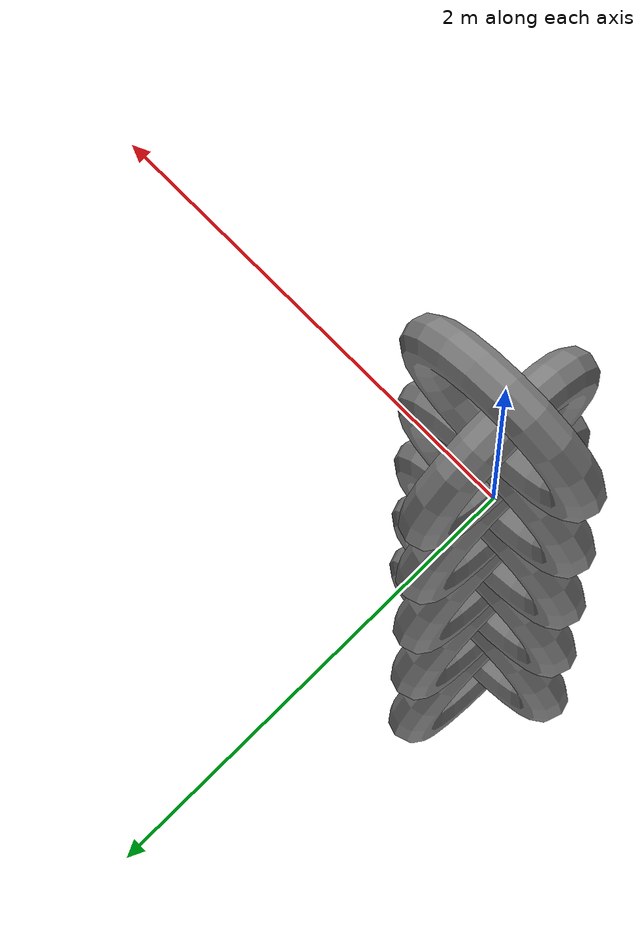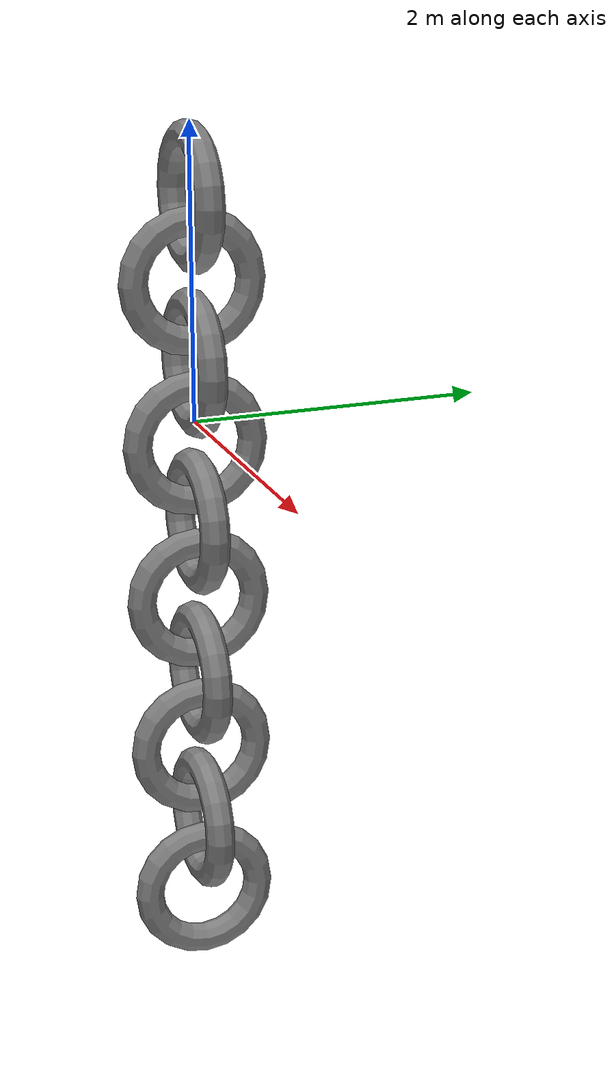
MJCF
<mujoco>
    <asset>
        <mesh file="torus.stl" name="torus"/>
    </asset>
    <worldbody>
        <body pos="-0 0 1.5" quat="0 0 0.707107 0.707107">
            <geom mesh="torus" type="mesh"/>
        </body>
        <body pos="-0 0 0.95" quat="-0.5 -0.5 0.5 0.5">
            <geom mesh="torus" type="mesh"/>
            <freejoint/>
        </body>
        <body pos="-0 0 0.4" quat="0 0 0.707107 0.707107">
            <geom mesh="torus" type="mesh"/>
            <freejoint/>
        </body>
        <body pos="-0 0 -0.15" quat="-0.5 -0.5 0.5 0.5">
            <geom mesh="torus" type="mesh"/>
            <freejoint/>
        </body>
        <body pos="-0 0 -0.7" quat="0 0 0.707107 0.707107">
            <geom mesh="torus" type="mesh"/>
            <freejoint/>
        </body>
        <body pos="-0 0 -1.25" quat="-0.5 -0.5 0.5 0.5">
            <geom mesh="torus" type="mesh"/>
            <freejoint/>
        </body>
        <body pos="-0 0 -1.8" quat="0 0 0.707107 0.707107">
            <geom mesh="torus" type="mesh"/>
            <freejoint/>
        </body>
        <body pos="-0 0 -2.35" quat="-0.5 -0.5 0.5 0.5">
            <geom mesh="torus" type="mesh"/>
            <freejoint/>
        </body>
        <body pos="-0 0 -2.9" quat="0 0 0.707107 0.707107">
            <geom mesh="torus" type="mesh"/>
            <freejoint/>
        </body>
        <body pos="-0 0 -3.45" quat="-0.5 -0.5 0.5 0.5">
            <geom mesh="torus" type="mesh"/>
            <freejoint/>
        </body>
    </worldbody>
</mujoco>
